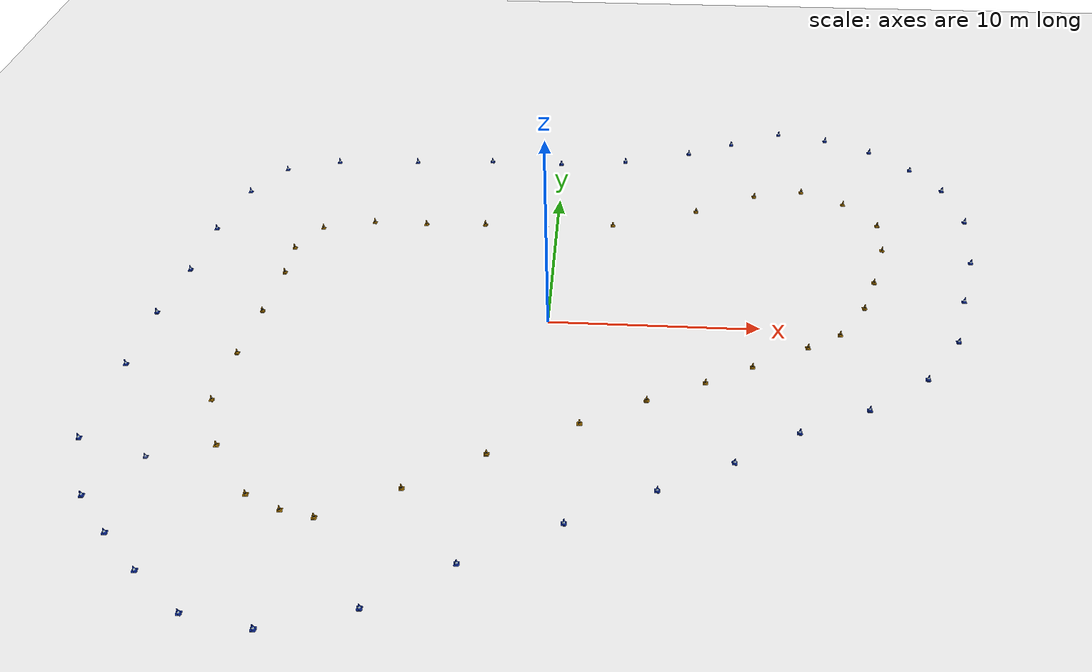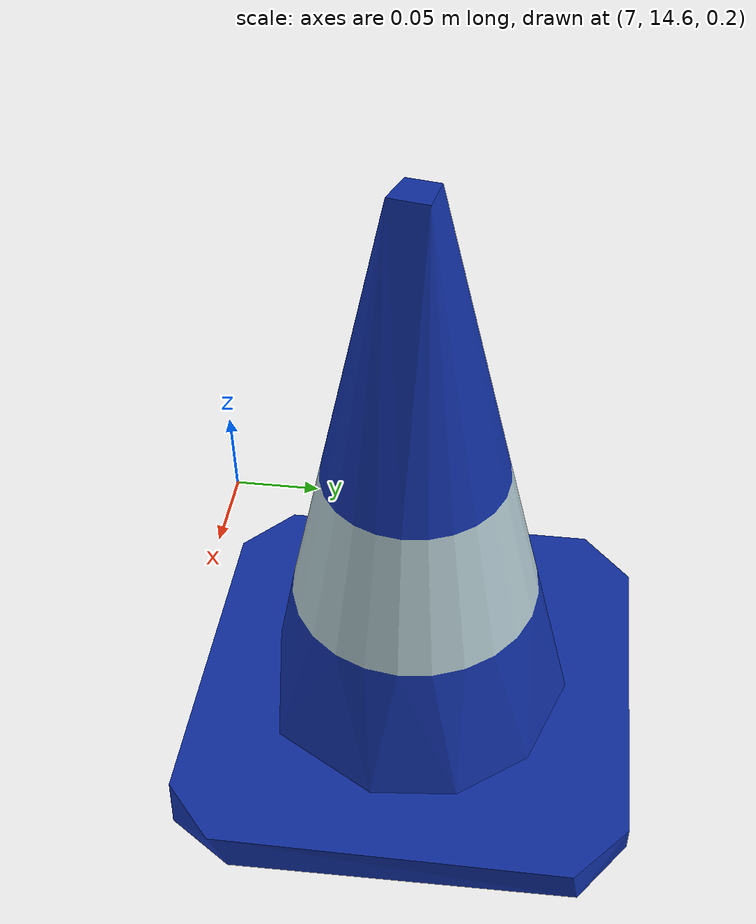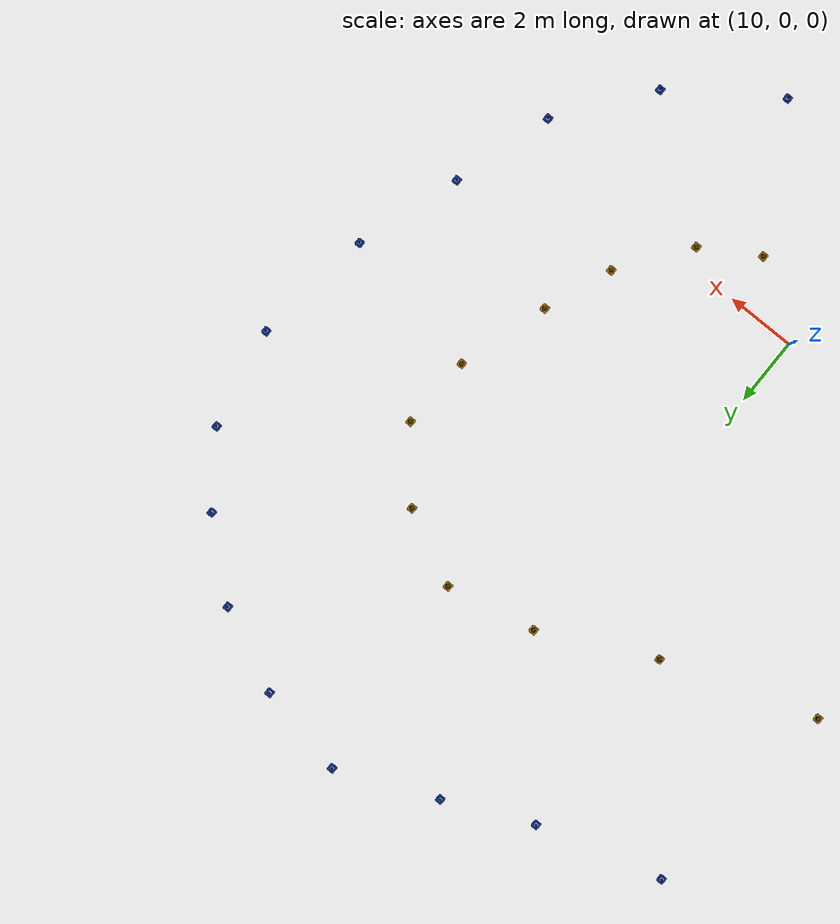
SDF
<sdf version='1.6'>
  <world name='default'>
    <gui fullscreen='0'>
      <camera name='user_camera'>
        <pose frame=''>-40 40 20 0 0.667643 -1</pose>
        <view_controller>orbit</view_controller>
        <projection_type>perspective</projection_type>
      </camera>
    </gui>

    <!-- WORLD SETTINGS -->
    <scene>
      <sky>
        <clouds>
          <speed>3</speed>
        </clouds>
      </sky>
      <ambient>1.0 1.0 1.0 1.0</ambient>
      <shadows>false</shadows>
    </scene>

    <light name='sun' type='directional'>
      <cast_shadows>1</cast_shadows>
      <pose frame=''>0 0 10 0 -0 0</pose>
      <diffuse>0.8 0.8 0.8 1</diffuse>
      <specular>0.1 0.1 0.1 1</specular>
      <attenuation>
        <range>1000</range>
        <constant>0.9</constant>
        <linear>0.01</linear>
        <quadratic>0.001</quadratic>
      </attenuation>
      <direction>-0.5 0.5 -1</direction>
    </light>

    <!-- MODELS -->
    <include>
      <uri>model://models/ground_plane</uri>
      <pose>0.0 0.0 0.0 0 0 0</pose>
    </include>

    <include>
      <uri>model://models/small_track</uri>
      <pose>0 0 0.1 0 0 0</pose>
    </include>

  </world>
</sdf>

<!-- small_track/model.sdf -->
<sdf version='1.6'>
  <model name='small_track'>
  <static>true</static>
    <link name='link_0'>
      <pose frame=''>-17.0129 9.72719 0.079001 0 -0 0</pose>

      <visual name="visual">
        <geometry>
          <mesh>
            <uri>model://eufs_description/meshes/cone_blue.dae</uri>
          </mesh>
        </geometry>
      </visual>
    </link>
    <link name='link_0_clone'>
      <pose frame=''>-12.7541 12.8712 0.079001 0 -0 0</pose>

      <visual name="visual">
        <geometry>
          <mesh>
            <uri>model://eufs_description/meshes/cone_blue.dae</uri>
          </mesh>
        </geometry>
      </visual>
    </link>
    <link name='link_0_clone_0_clone'>
      <pose frame=''>-12.2686 6.61784 0.070966 -0.001555 0.00019 -5.2e-05</pose>

      <visual name="visual">
        <geometry>
          <mesh>
            <uri>model://eufs_description/meshes/cone_yellow.dae</uri>
          </mesh>
        </geometry>
      </visual>
    </link>
    <link name='link_0_clone_0_clone_clone'>
      <pose frame=''>-9.65737 7.2378 0.083534 0.001019 -0.000437 -0.000128</pose>

      <visual name="visual">
        <geometry>
          <mesh>
            <uri>model://eufs_description/meshes/cone_yellow.dae</uri>
          </mesh>
        </geometry>
      </visual>
    </link>
    <link name='link_0_clone_1'>
      <pose frame=''>-8.31569 13.0924 0.079001 0 -0 0</pose>

      <visual name="visual">
        <geometry>
          <mesh>
            <uri>model://eufs_description/meshes/cone_blue.dae</uri>
          </mesh>
        </geometry>
      </visual>
    </link>
    <link name='link_0_clone_10'>
      <pose frame=''>7.33516 9.03961 0.083556 0 -0 0</pose>

      <visual name="visual">
        <geometry>
          <mesh>
            <uri>model://eufs_description/meshes/cone_yellow.dae</uri>
          </mesh>
        </geometry>
      </visual>
    </link>
    <link name='link_0_clone_11'>
      <pose frame=''>9.62956 15.8379 0.084236 0 -0 0</pose>

      <visual name="visual">
        <geometry>
          <mesh>
            <uri>model://eufs_description/meshes/cone_blue.dae</uri>
          </mesh>
        </geometry>
      </visual>
    </link>
    <link name='link_0_clone_12'>
      <pose frame=''>10.548 10.5892 0.085274 0 -0 0</pose>

      <visual name="visual">
        <geometry>
          <mesh>
            <uri>model://eufs_description/meshes/cone_yellow.dae</uri>
          </mesh>
        </geometry>
      </visual>
    </link>
    <link name='link_0_clone_13'>
      <pose frame=''>13.1479 11.1316 0.08476 0 -0 0</pose>

      <visual name="visual">
        <geometry>
          <mesh>
            <uri>model://eufs_description/meshes/cone_yellow.dae</uri>
          </mesh>
        </geometry>
      </visual>
    </link>
    <link name='link_0_clone_14'>
      <pose frame=''>12.492 17.0404 0.083705 0 -0 0</pose>

      <visual name="visual">
        <geometry>
          <mesh>
            <uri>model://eufs_description/meshes/cone_blue.dae</uri>
          </mesh>
        </geometry>
      </visual>
    </link>
    <link name='link_0_clone_15'>
      <pose frame=''>15.1389 16.5025 0.082223 0 -0 0</pose>

      <visual name="visual">
        <geometry>
          <mesh>
            <uri>model://eufs_description/meshes/cone_blue.dae</uri>
          </mesh>
        </geometry>
      </visual>
    </link>
    <link name='link_0_clone_16'>
      <pose frame=''>15.2725 10.0791 0.08035 0 -0 0</pose>

      <visual name="visual">
        <geometry>
          <mesh>
            <uri>model://eufs_description/meshes/cone_yellow.dae</uri>
          </mesh>
        </geometry>
      </visual>
    </link>
    <link name='link_0_clone_17'>
      <pose frame=''>19.5034 13.6361 0.079669 0 -0 0</pose>

      <visual name="visual">
        <geometry>
          <mesh>
            <uri>model://eufs_description/meshes/cone_blue.dae</uri>
          </mesh>
        </geometry>
      </visual>
    </link>
    <link name='link_0_clone_17_clone'>
      <pose frame=''>20.8922 11.7012 0.056623 -0.001555 0.00019 -5.2e-05</pose>

      <visual name="visual">
        <geometry>
          <mesh>
            <uri>model://eufs_description/meshes/cone_blue.dae</uri>
          </mesh>
        </geometry>
      </visual>
    </link>
    <link name='link_0_clone_17_clone_0'>
      <pose frame=''>17.5221 15.3812 0.082077 -0.001555 0.00019 -5.2e-05</pose>

      <visual name="visual">
        <geometry>
          <mesh>
            <uri>model://eufs_description/meshes/cone_blue.dae</uri>
          </mesh>
        </geometry>
      </visual>
    </link>
    <link name='link_0_clone_18'>
      <pose frame=''>16.8037 8.23821 0.079433 0 -0 0</pose>

      <visual name="visual">
        <geometry>
          <mesh>
            <uri>model://eufs_description/meshes/cone_yellow.dae</uri>
          </mesh>
        </geometry>
      </visual>
    </link>
    <link name='link_0_clone_19'>
      <pose frame=''>21.4761 8.79574 0.079001 0 -0 0</pose>

      <visual name="visual">
        <geometry>
          <mesh>
            <uri>model://eufs_description/meshes/cone_blue.dae</uri>
          </mesh>
        </geometry>
      </visual>
    </link>
    <link name='link_0_clone_2'>
      <pose frame=''>-6.90273 7.20128 0.080073 0 -0 0</pose>

      <visual name="visual">
        <geometry>
          <mesh>
            <uri>model://eufs_description/meshes/cone_yellow.dae</uri>
          </mesh>
        </geometry>
      </visual>
    </link>
    <link name='link_0_clone_20'>
      <pose frame=''>20.9992 5.27662 0.079001 0 -0 0</pose>

      <visual name="visual">
        <geometry>
          <mesh>
            <uri>model://eufs_description/meshes/cone_blue.dae</uri>
          </mesh>
        </geometry>
      </visual>
    </link>
    <link name='link_0_clone_21'>
      <pose frame=''>16.7063 6.10772 0.079001 0 -0 0</pose>

      <visual name="visual">
        <geometry>
          <mesh>
            <uri>model://eufs_description/meshes/cone_yellow.dae</uri>
          </mesh>
        </geometry>
      </visual>
    </link>
    <link name='link_0_clone_22'>
      <pose frame=''>19.9925 2.24053 0.079001 0 -0 0</pose>

      <visual name="visual">
        <geometry>
          <mesh>
            <uri>model://eufs_description/meshes/cone_blue.dae</uri>
          </mesh>
        </geometry>
      </visual>
    </link>
    <link name='link_0_clone_23'>
      <pose frame=''>15.876 3.47906 0.079001 0 -0 0</pose>

      <visual name="visual">
        <geometry>
          <mesh>
            <uri>model://eufs_description/meshes/cone_yellow.dae</uri>
          </mesh>
        </geometry>
      </visual>
    </link>
    <link name='link_0_clone_24'>
      <pose frame=''>15.106 1.5027 0.079001 0 -0 0</pose>

      <visual name="visual">
        <geometry>
          <mesh>
            <uri>model://eufs_description/meshes/cone_yellow.dae</uri>
          </mesh>
        </geometry>
      </visual>
    </link>
    <link name='link_0_clone_25'>
      <pose frame=''>19.0983 -0.671871 0.079001 0 -0 0</pose>

      <visual name="visual">
        <geometry>
          <mesh>
            <uri>model://eufs_description/meshes/cone_blue.dae</uri>
          </mesh>
        </geometry>
      </visual>
    </link>
    <link name='link_0_clone_26'>
      <pose frame=''>13.6765 -0.472612 0.079001 0 -0 0</pose>

      <visual name="visual">
        <geometry>
          <mesh>
            <uri>model://eufs_description/meshes/cone_yellow.dae</uri>
          </mesh>
        </geometry>
      </visual>
    </link>
    <link name='link_0_clone_27'>
      <pose frame=''>17.1824 -3.23994 0.079001 0 -0 0</pose>

      <visual name="visual">
        <geometry>
          <mesh>
            <uri>model://eufs_description/meshes/cone_blue.dae</uri>
          </mesh>
        </geometry>
      </visual>
    </link>
    <link name='link_0_clone_28'>
      <pose frame=''>9.41953 -2.84739 0.079001 0 -0 0</pose>

      <visual name="visual">
        <geometry>
          <mesh>
            <uri>model://eufs_description/meshes/cone_yellow.dae</uri>
          </mesh>
        </geometry>
      </visual>
    </link>
    <link name='link_0_clone_29'>
      <pose frame=''>11.114 -6.74408 0.079001 0 -0 0</pose>

      <visual name="visual">
        <geometry>
          <mesh>
            <uri>model://eufs_description/meshes/cone_blue.dae</uri>
          </mesh>
        </geometry>
      </visual>
    </link>
    <link name='link_0_clone_3'>
      <pose frame=''>-4.06552 13.3637 0.079001 0 -0 0</pose>

      <visual name="visual">
        <geometry>
          <mesh>
            <uri>model://eufs_description/meshes/cone_blue.dae</uri>
          </mesh>
        </geometry>
      </visual>
    </link>
    <link name='link_0_clone_30'>
      <pose frame=''>12.0732 -1.43122 0.079001 0 -0 0</pose>

      <visual name="visual">
        <geometry>
          <mesh>
            <uri>model://eufs_description/meshes/cone_yellow.dae</uri>
          </mesh>
        </geometry>
      </visual>
    </link>
    <link name='link_0_clone_31'>
      <pose frame=''>14.2831 -5.26437 0.079001 0 -0 0</pose>

      <visual name="visual">
        <geometry>
          <mesh>
            <uri>model://eufs_description/meshes/cone_blue.dae</uri>
          </mesh>
        </geometry>
      </visual>
    </link>
    <link name='link_0_clone_32'>
      <pose frame=''>7.26282 -3.9408 0.079001 0 -0 0</pose>

      <visual name="visual">
        <geometry>
          <mesh>
            <uri>model://eufs_description/meshes/cone_yellow.dae</uri>
          </mesh>
        </geometry>
      </visual>
    </link>
    <link name='link_0_clone_33'>
      <pose frame=''>8.25363 -8.53889 0.079001 0 -0 0</pose>

      <visual name="visual">
        <geometry>
          <mesh>
            <uri>model://eufs_description/meshes/cone_blue.dae</uri>
          </mesh>
        </geometry>
      </visual>
    </link>
    <link name='link_0_clone_34'>
      <pose frame=''>4.65159 -5.15509 0.079001 0 -0 0</pose>

      <visual name="visual">
        <geometry>
          <mesh>
            <uri>model://eufs_description/meshes/cone_yellow.dae</uri>
          </mesh>
        </geometry>
      </visual>
    </link>
    <link name='link_0_clone_35'>
      <pose frame=''>5.06185 -10.1551 0.079001 0 -0 0</pose>

      <visual name="visual">
        <geometry>
          <mesh>
            <uri>model://eufs_description/meshes/cone_blue.dae</uri>
          </mesh>
        </geometry>
      </visual>
    </link>
    <link name='link_0_clone_36'>
      <pose frame=''>1.78774 -6.66723 0.079001 0 -0 0</pose>

      <visual name="visual">
        <geometry>
          <mesh>
            <uri>model://eufs_description/meshes/cone_yellow.dae</uri>
          </mesh>
        </geometry>
      </visual>
    </link>
    <link name='link_0_clone_37'>
      <pose frame=''>1.42086 -11.9634 0.079001 0 -0 0</pose>

      <visual name="visual">
        <geometry>
          <mesh>
            <uri>model://eufs_description/meshes/cone_blue.dae</uri>
          </mesh>
        </geometry>
      </visual>
    </link>
    <link name='link_0_clone_38'>
      <pose frame=''>-1.97969 -8.56329 0.079001 0 -0 0</pose>

      <visual name="visual">
        <geometry>
          <mesh>
            <uri>model://eufs_description/meshes/cone_yellow.dae</uri>
          </mesh>
        </geometry>
      </visual>
    </link>
    <link name='link_0_clone_39'>
      <pose frame=''>-2.4975 -14.0305 0.079001 0 -0 0</pose>

      <visual name="visual">
        <geometry>
          <mesh>
            <uri>model://eufs_description/meshes/cone_blue.dae</uri>
          </mesh>
        </geometry>
      </visual>
    </link>
    <link name='link_0_clone_4'>
      <pose frame=''>-3.80615 7.33616 0.079001 0 -0 0</pose>

      <visual name="visual">
        <geometry>
          <mesh>
            <uri>model://eufs_description/meshes/cone_yellow.dae</uri>
          </mesh>
        </geometry>
      </visual>
    </link>
    <link name='link_0_clone_40'>
      <pose frame=''>-5.18123 -10.5555 0.079001 0 -0 0</pose>

      <visual name="visual">
        <geometry>
          <mesh>
            <uri>model://eufs_description/meshes/cone_yellow.dae</uri>
          </mesh>
        </geometry>
      </visual>
    </link>
    <link name='link_0_clone_41'>
      <pose frame=''>-5.74864 -16.1217 0.079001 0 -0 0</pose>

      <visual name="visual">
        <geometry>
          <mesh>
            <uri>model://eufs_description/meshes/cone_blue.dae</uri>
          </mesh>
        </geometry>
      </visual>
    </link>
    <link name='link_0_clone_42'>
      <pose frame=''>-8.34841 -12.1551 0.079001 0 -0 0</pose>

      <visual name="visual">
        <geometry>
          <mesh>
            <uri>model://eufs_description/meshes/cone_yellow.dae</uri>
          </mesh>
        </geometry>
      </visual>
    </link>
    <link name='link_0_clone_43'>
      <pose frame=''>-9.34841 -17.1551 0.079001 0 -0 0</pose>

      <visual name="visual">
        <geometry>
          <mesh>
            <uri>model://eufs_description/meshes/cone_blue.dae</uri>
          </mesh>
        </geometry>
      </visual>
    </link>
    <link name='link_0_clone_44'>
      <pose frame=''>-9.78487 -11.8592 0.079001 0 -0 0</pose>

      <visual name="visual">
        <geometry>
          <mesh>
            <uri>model://eufs_description/meshes/cone_yellow.dae</uri>
          </mesh>
        </geometry>
      </visual>
    </link>
    <link name='link_0_clone_45'>
      <pose frame=''>-12.2114 -16.6459 0.079001 0 -0 0</pose>

      <visual name="visual">
        <geometry>
          <mesh>
            <uri>model://eufs_description/meshes/cone_blue.dae</uri>
          </mesh>
        </geometry>
      </visual>
    </link>
    <link name='link_0_clone_46'>
      <pose frame=''>-11.3484 -11.1551 0.079001 0 -0 0</pose>

      <visual name="visual">
        <geometry>
          <mesh>
            <uri>model://eufs_description/meshes/cone_yellow.dae</uri>
          </mesh>
        </geometry>
      </visual>
    </link>
    <link name='link_0_clone_47'>
      <pose frame=''>-14.4625 -14.9249 0.079001 0 -0 0</pose>

      <visual name="visual">
        <geometry>
          <mesh>
            <uri>model://eufs_description/meshes/cone_blue.dae</uri>
          </mesh>
        </geometry>
      </visual>
    </link>
    <link name='link_0_clone_48'>
      <pose frame=''>-16.2427 -13.276 0.079001 0 -0 0</pose>

      <visual name="visual">
        <geometry>
          <mesh>
            <uri>model://eufs_description/meshes/cone_blue.dae</uri>
          </mesh>
        </geometry>
      </visual>
    </link>
    <link name='link_0_clone_49'>
      <pose frame=''>-13.2946 -8.64709 0.079001 0 -0 0</pose>

      <visual name="visual">
        <geometry>
          <mesh>
            <uri>model://eufs_description/meshes/cone_yellow.dae</uri>
          </mesh>
        </geometry>
      </visual>
    </link>
    <link name='link_0_clone_5'>
      <pose frame=''>-0.131239 13.3125 0.079001 0 -0 0</pose>

      <visual name="visual">
        <geometry>
          <mesh>
            <uri>model://eufs_description/meshes/cone_blue.dae</uri>
          </mesh>
        </geometry>
      </visual>
    </link>
    <link name='link_0_clone_50'>
      <pose frame=''>-17.8615 -11.5349 0.079001 0 -0 0</pose>

      <visual name="visual">
        <geometry>
          <mesh>
            <uri>model://eufs_description/meshes/cone_blue.dae</uri>
          </mesh>
        </geometry>
      </visual>
    </link>
    <link name='link_0_clone_51'>
      <pose frame=''>-14.2998 -6.05581 0.079001 0 -0 0</pose>

      <visual name="visual">
        <geometry>
          <mesh>
            <uri>model://eufs_description/meshes/cone_yellow.dae</uri>
          </mesh>
        </geometry>
      </visual>
    </link>
    <link name='link_0_clone_52'>
      <pose frame=''>-19.1945 -8.52656 0.079001 0 -0 0</pose>

      <visual name="visual">
        <geometry>
          <mesh>
            <uri>model://eufs_description/meshes/cone_blue.dae</uri>
          </mesh>
        </geometry>
      </visual>
    </link>
    <link name='link_0_clone_53'>
      <pose frame=''>-18.9382 -5.15509 -4.97705 0 -0 0</pose>

      <visual name="visual">
        <geometry>
          <mesh>
            <uri>model://eufs_description/meshes/cone_blue.dae</uri>
          </mesh>
        </geometry>
      </visual>
    </link>
    <link name='link_0_clone_54'>
      <pose frame=''>-14.0528 -3.05427 0.079001 0 -0 0</pose>

      <visual name="visual">
        <geometry>
          <mesh>
            <uri>model://eufs_description/meshes/cone_yellow.dae</uri>
          </mesh>
        </geometry>
      </visual>
    </link>
    <link name='link_0_clone_55'>
      <pose frame=''>-18.8625 -4.02997 0.079001 0 -0 0</pose>

      <visual name="visual">
        <geometry>
          <mesh>
            <uri>model://eufs_description/meshes/cone_blue.dae</uri>
          </mesh>
        </geometry>
      </visual>
    </link>
    <link name='link_0_clone_56'>
      <pose frame=''>-18.6872 -0.45783 0.079001 0 -0 0</pose>

      <visual name="visual">
        <geometry>
          <mesh>
            <uri>model://eufs_description/meshes/cone_blue.dae</uri>
          </mesh>
        </geometry>
      </visual>
    </link>
    <link name='link_0_clone_57'>
      <pose frame=''>-13.6807 -0.101053 0.079001 0 -0 0</pose>

      <visual name="visual">
        <geometry>
          <mesh>
            <uri>model://eufs_description/meshes/cone_yellow.dae</uri>
          </mesh>
        </geometry>
      </visual>
    </link>
    <link name='link_0_clone_58'>
      <pose frame=''>-18.1384 2.83132 0.079001 0 -0 0</pose>

      <visual name="visual">
        <geometry>
          <mesh>
            <uri>model://eufs_description/meshes/cone_blue.dae</uri>
          </mesh>
        </geometry>
      </visual>
    </link>
    <link name='link_0_clone_59'>
      <pose frame=''>-13.3484 2.84491 0.079001 0 -0 0</pose>

      <visual name="visual">
        <geometry>
          <mesh>
            <uri>model://eufs_description/meshes/cone_yellow.dae</uri>
          </mesh>
        </geometry>
      </visual>
    </link>
    <link name='link_0_clone_6'>
      <pose frame=''>-0.595997 7.27843 0.079001 0 -0 0</pose>

      <visual name="visual">
        <geometry>
          <mesh>
            <uri>model://eufs_description/meshes/cone_yellow.dae</uri>
          </mesh>
        </geometry>
      </visual>
    </link>
    <link name='link_0_clone_60'>
      <pose frame=''>-17.8432 6.27091 0.079001 0 -0 0</pose>

      <visual name="visual">
        <geometry>
          <mesh>
            <uri>model://eufs_description/meshes/cone_blue.dae</uri>
          </mesh>
        </geometry>
      </visual>
    </link>
    <link name='link_0_clone_61'>
      <pose frame=''>-13.3484 4.84491 0.079001 0 -0 0</pose>

      <visual name="visual">
        <geometry>
          <mesh>
            <uri>model://eufs_description/meshes/cone_yellow.dae</uri>
          </mesh>
        </geometry>
      </visual>
    </link>
    <link name='link_0_clone_62'>
      <pose frame=''>-15.5443 12.0063 0.063291 -0.001555 0.00019 -5.2e-05</pose>

      <visual name="visual">
        <geometry>
          <mesh>
            <uri>model://eufs_description/meshes/cone_blue.dae</uri>
          </mesh>
        </geometry>
      </visual>
    </link>
    <link name='link_0_clone_7'>
      <pose frame=''>3.50416 13.7245 0.080395 0 -0 0</pose>

      <visual name="visual">
        <geometry>
          <mesh>
            <uri>model://eufs_description/meshes/cone_blue.dae</uri>
          </mesh>
        </geometry>
      </visual>
    </link>
    <link name='link_0_clone_8'>
      <pose frame=''>2.90884 7.57594 0.07997 0 -0 0</pose>

      <visual name="visual">
        <geometry>
          <mesh>
            <uri>model://eufs_description/meshes/cone_yellow.dae</uri>
          </mesh>
        </geometry>
      </visual>
    </link>
    <link name='link_0_clone_9'>
      <pose frame=''>7.13676 14.727 0.083062 0 -0 0</pose>

      <visual name="visual">
        <geometry>
          <mesh>
            <uri>model://eufs_description/meshes/cone_blue.dae</uri>
          </mesh>
        </geometry>
      </visual>
    </link>
    <static>0</static>
    <allow_auto_disable>1</allow_auto_disable>
  </model>
</sdf>
